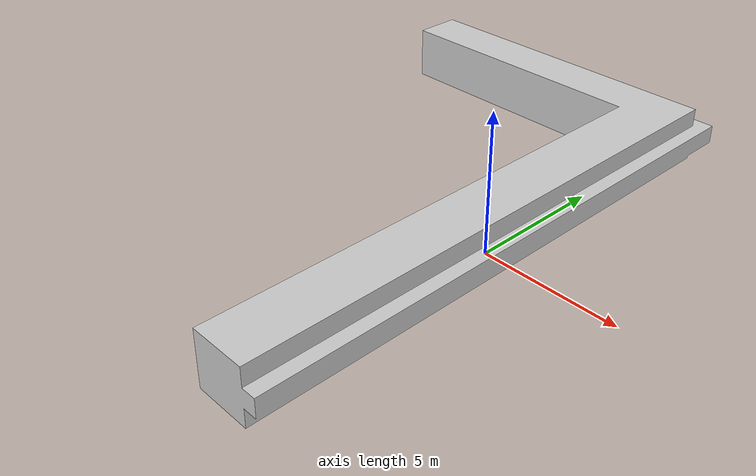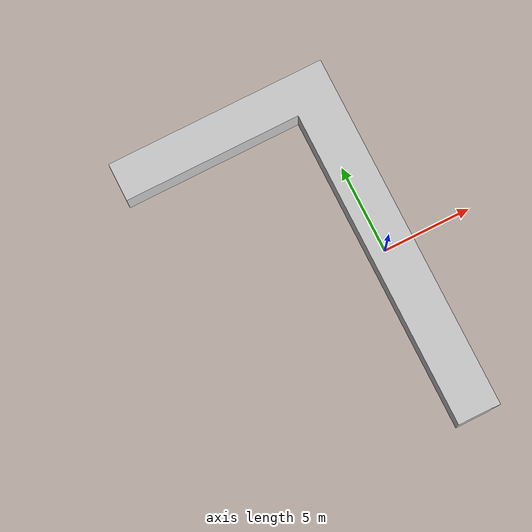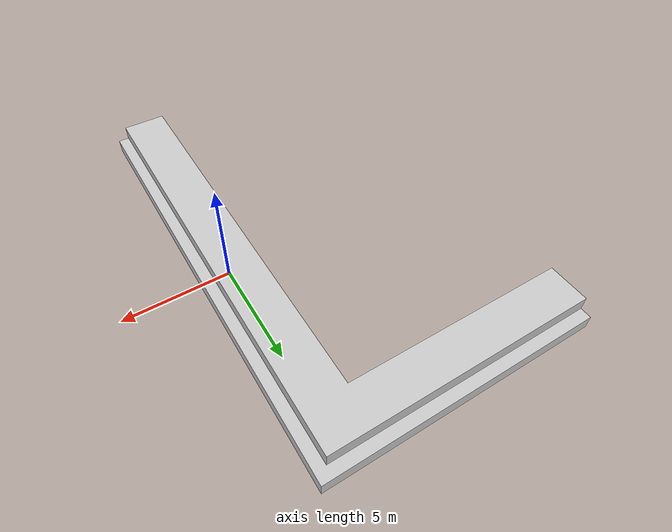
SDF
<sdf version="1.4">
  <world name="default">
    <!-- GLobal Illumination -->
    <include>
      <uri>model://sun</uri>
    </include>
    <!-- Load in the CAD model of the environment -->
    <model name="simple_corridor">
      <pose>0 0 0  0 0 0</pose>
      <static>true</static>
      <link name="body">
        <collision name="simple_corridor_collision">
          <geometry>
            <mesh>
              <!-- We load a stl file instead as collision checks do not need non-geometric info -->
              <uri>file://simple_corridor/simple_corridor.stl</uri>
            </mesh>
          </geometry>
        </collision>
        <visual name="simple_corridor_visual">
          <geometry>
            <mesh>
              <uri>file://simple_corridor/simple_corridor.dae</uri>
            </mesh>
          </geometry>
        </visual>
      </link>
    </model>
  </world>
</sdf>
